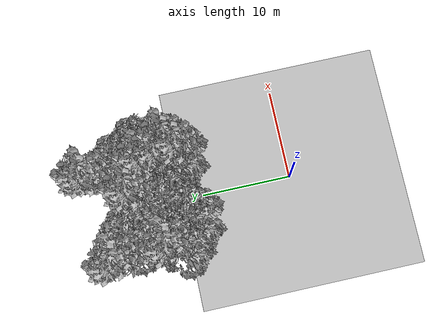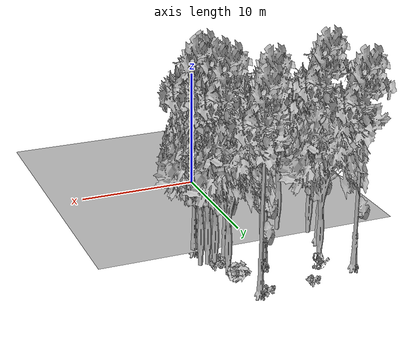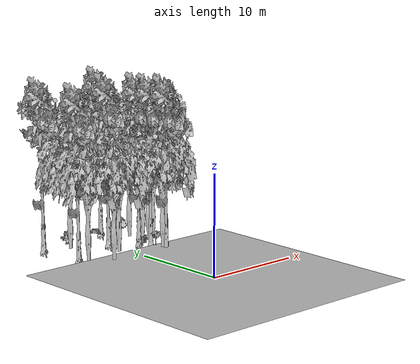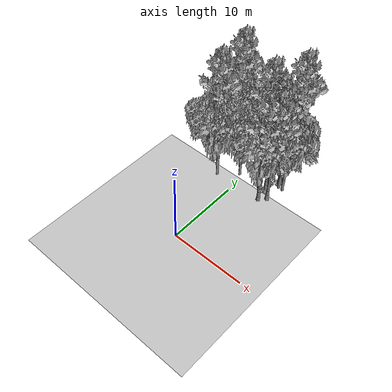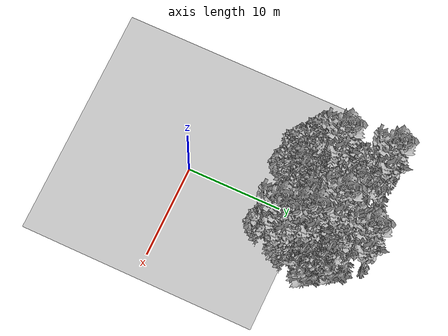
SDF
<sdf version="1.7">
 <world name="default">
  <model name="ground_plane">
   <static>1</static>
   <link name="link">
    <collision name="collision">
     <pose>-50 0 0 0 -0 0</pose>
     <geometry><plane><normal>0 0 1</normal><size>80 80</size></plane></geometry>
     <surface><contact><ode><min_depth>0.01</min_depth><max_vel>0</max_vel></ode></contact></surface>
    </collision>
    <visual name="grass">
     <cast_shadows>0</cast_shadows>
     <geometry>
      <mesh>
       <scale>0.46714285714285714 0.46714285714285714 0.1</scale>
       <uri>file://grass_plane/meshes/grass_plane.dae</uri>
      </mesh>
     </geometry>
    </visual>
   </link>
  </model>
  <model name="Tree 15">
   <static>1</static>
   <pose>-3.008472073308333 11.177539338462708 0 1.57079 -0 0</pose>
   <link name="link">
    <collision name="collision">
     <geometry><mesh><scale>3.5 5 3.5</scale><uri>model://tree_2/meshes/tree_2.obj</uri></mesh></geometry>
    </collision>
    <visual name="visual">
     <geometry><mesh><scale>3.5 5 3.5</scale><uri>model://tree_2/meshes/tree_2.obj</uri></mesh></geometry>
    </visual>
   </link>
  </model>
  <model name="Tree 34">
   <static>1</static>
   <pose>3.1567396485384123 14.59903139613359 0 1.57079 -0 0</pose>
   <link name="link">
    <collision name="collision">
     <geometry><mesh><scale>3.5 5 3.5</scale><uri>model://tree_9/meshes/tree_9.obj</uri></mesh></geometry>
    </collision>
    <visual name="visual">
     <geometry><mesh><scale>3.5 5 3.5</scale><uri>model://tree_9/meshes/tree_9.obj</uri></mesh></geometry>
    </visual>
   </link>
  </model>
  <model name="Tree 77">
   <static>1</static>
   <pose>4.506748126967771 14.727951077494403 0 1.57079 -0 0</pose>
   <link name="link">
    <collision name="collision">
     <geometry><mesh><scale>3.5 5 3.5</scale><uri>model://tree_2/meshes/tree_2.obj</uri></mesh></geometry>
    </collision>
    <visual name="visual">
     <geometry><mesh><scale>3.5 5 3.5</scale><uri>model://tree_2/meshes/tree_2.obj</uri></mesh></geometry>
    </visual>
   </link>
  </model>
  <model name="Tree 78">
   <static>1</static>
   <pose>3.893614119896853 11.234296576654465 0 1.57079 -0 0</pose>
   <link name="link">
    <collision name="collision">
     <geometry><mesh><scale>3.5 5 3.5</scale><uri>model://tree_9/meshes/tree_9.obj</uri></mesh></geometry>
    </collision>
    <visual name="visual">
     <geometry><mesh><scale>3.5 5 3.5</scale><uri>model://tree_9/meshes/tree_9.obj</uri></mesh></geometry>
    </visual>
   </link>
  </model>
  <model name="Tree 80">
   <static>1</static>
   <pose>2.6789125310340935 20.16093463343782 0 1.57079 -0 0</pose>
   <link name="link">
    <collision name="collision">
     <geometry><mesh><scale>3.5 5 3.5</scale><uri>model://tree_9/meshes/tree_9.obj</uri></mesh></geometry>
    </collision>
    <visual name="visual">
     <geometry><mesh><scale>3.5 5 3.5</scale><uri>model://tree_9/meshes/tree_9.obj</uri></mesh></geometry>
    </visual>
   </link>
  </model>
  <model name="Tree 92">
   <static>1</static>
   <pose>4.6491770082688575 12.11317582660427 0 1.57079 -0 0</pose>
   <link name="link">
    <collision name="collision">
     <geometry><mesh><scale>3.5 5 3.5</scale><uri>model://tree_9/meshes/tree_9.obj</uri></mesh></geometry>
    </collision>
    <visual name="visual">
     <geometry><mesh><scale>3.5 5 3.5</scale><uri>model://tree_9/meshes/tree_9.obj</uri></mesh></geometry>
    </visual>
   </link>
  </model>
  <model name="Tree 95">
   <static>1</static>
   <pose>-0.7458743930317482 13.14456808631256 0 1.57079 -0 0</pose>
   <link name="link">
    <collision name="collision">
     <geometry><mesh><scale>3.5 5 3.5</scale><uri>model://tree_2/meshes/tree_2.obj</uri></mesh></geometry>
    </collision>
    <visual name="visual">
     <geometry><mesh><scale>3.5 5 3.5</scale><uri>model://tree_2/meshes/tree_2.obj</uri></mesh></geometry>
    </visual>
   </link>
  </model>
  <model name="Tree 125">
   <static>1</static>
   <pose>3.5507401307957878 13.223727061594495 0 1.57079 -0 0</pose>
   <link name="link">
    <collision name="collision">
     <geometry><mesh><scale>3.5 5 3.5</scale><uri>model://tree_9/meshes/tree_9.obj</uri></mesh></geometry>
    </collision>
    <visual name="visual">
     <geometry><mesh><scale>3.5 5 3.5</scale><uri>model://tree_9/meshes/tree_9.obj</uri></mesh></geometry>
    </visual>
   </link>
  </model>
  <model name="Tree 157">
   <static>1</static>
   <pose>0.6082294412260865 16.356380824105486 0 1.57079 -0 0</pose>
   <link name="link">
    <collision name="collision">
     <geometry><mesh><scale>3.5 5 3.5</scale><uri>model://tree_9/meshes/tree_9.obj</uri></mesh></geometry>
    </collision>
    <visual name="visual">
     <geometry><mesh><scale>3.5 5 3.5</scale><uri>model://tree_9/meshes/tree_9.obj</uri></mesh></geometry>
    </visual>
   </link>
  </model>
  <model name="Tree 202">
   <static>1</static>
   <pose>-5.1987846861672224 13.87654636457134 0 1.57079 -0 0</pose>
   <link name="link">
    <collision name="collision">
     <geometry><mesh><scale>3.5 5 3.5</scale><uri>model://tree_9/meshes/tree_9.obj</uri></mesh></geometry>
    </collision>
    <visual name="visual">
     <geometry><mesh><scale>3.5 5 3.5</scale><uri>model://tree_9/meshes/tree_9.obj</uri></mesh></geometry>
    </visual>
   </link>
  </model>
  <model name="Tree 282">
   <static>1</static>
   <pose>-5.0518184097865415 12.636314302199132 0 1.57079 -0 0</pose>
   <link name="link">
    <collision name="collision">
     <geometry><mesh><scale>3.5 5 3.5</scale><uri>model://tree_2/meshes/tree_2.obj</uri></mesh></geometry>
    </collision>
    <visual name="visual">
     <geometry><mesh><scale>3.5 5 3.5</scale><uri>model://tree_2/meshes/tree_2.obj</uri></mesh></geometry>
    </visual>
   </link>
  </model>
  <model name="Tree 297">
   <static>1</static>
   <pose>4.113312639262723 15.21232277753667 0 1.57079 -0 0</pose>
   <link name="link">
    <collision name="collision">
     <geometry><mesh><scale>3.5 5 3.5</scale><uri>model://tree_2/meshes/tree_2.obj</uri></mesh></geometry>
    </collision>
    <visual name="visual">
     <geometry><mesh><scale>3.5 5 3.5</scale><uri>model://tree_2/meshes/tree_2.obj</uri></mesh></geometry>
    </visual>
   </link>
  </model>
  <model name="Tree 338">
   <static>1</static>
   <pose>-5.690571813645356 18.91916739874305 0 1.57079 -0 0</pose>
   <link name="link">
    <collision name="collision">
     <geometry><mesh><scale>3.5 5 3.5</scale><uri>model://tree_9/meshes/tree_9.obj</uri></mesh></geometry>
    </collision>
    <visual name="visual">
     <geometry><mesh><scale>3.5 5 3.5</scale><uri>model://tree_9/meshes/tree_9.obj</uri></mesh></geometry>
    </visual>
   </link>
  </model>
  <model name="Tree 415">
   <static>1</static>
   <pose>5.0722901919332415 14.70469992831088 0 1.57079 -0 0</pose>
   <link name="link">
    <collision name="collision">
     <geometry><mesh><scale>3.5 5 3.5</scale><uri>model://tree_2/meshes/tree_2.obj</uri></mesh></geometry>
    </collision>
    <visual name="visual">
     <geometry><mesh><scale>3.5 5 3.5</scale><uri>model://tree_2/meshes/tree_2.obj</uri></mesh></geometry>
    </visual>
   </link>
  </model>
  <model name="Tree 433">
   <static>1</static>
   <pose>3.750443136170034 16.877378313252876 0 1.57079 -0 0</pose>
   <link name="link">
    <collision name="collision">
     <geometry><mesh><scale>3.5 5 3.5</scale><uri>model://tree_2/meshes/tree_2.obj</uri></mesh></geometry>
    </collision>
    <visual name="visual">
     <geometry><mesh><scale>3.5 5 3.5</scale><uri>model://tree_2/meshes/tree_2.obj</uri></mesh></geometry>
    </visual>
   </link>
  </model>
  <model name="Tree 569">
   <static>1</static>
   <pose>3.5848150022201324 11.493796048506056 0 1.57079 -0 0</pose>
   <link name="link">
    <collision name="collision">
     <geometry><mesh><scale>3.5 5 3.5</scale><uri>model://tree_2/meshes/tree_2.obj</uri></mesh></geometry>
    </collision>
    <visual name="visual">
     <geometry><mesh><scale>3.5 5 3.5</scale><uri>model://tree_2/meshes/tree_2.obj</uri></mesh></geometry>
    </visual>
   </link>
  </model>
  <model name="Tree 607">
   <static>1</static>
   <pose>-3.665129989836359 17.236085767057915 0 1.57079 -0 0</pose>
   <link name="link">
    <collision name="collision">
     <geometry><mesh><scale>3.5 5 3.5</scale><uri>model://tree_2/meshes/tree_2.obj</uri></mesh></geometry>
    </collision>
    <visual name="visual">
     <geometry><mesh><scale>3.5 5 3.5</scale><uri>model://tree_2/meshes/tree_2.obj</uri></mesh></geometry>
    </visual>
   </link>
  </model>
  <model name="Bush 294">
   <static>1</static>
   <pose>-1.6454879413047365 20.18886357991508 0 1.57079 -0 0</pose>
   <link name="link">
    <collision name="collision">
     <geometry><mesh><scale>2 2 2</scale><uri>model://bush_2/meshes/bush_2.obj</uri></mesh></geometry>
     <surface><contact><collide_without_contact>false</collide_without_contact></contact></surface>
    </collision>
    <visual name="visual">
     <geometry><mesh><scale>2 2 2</scale><uri>model://bush_2/meshes/bush_2.obj</uri></mesh></geometry>
    </visual>
   </link>
  </model>
  <model name="Bush 313">
   <static>1</static>
   <pose>2.115046912629296 20.31048165812131 0 1.57079 -0 0</pose>
   <link name="link">
    <collision name="collision">
     <geometry><mesh><scale>2 2 2</scale><uri>model://bush_2/meshes/bush_2.obj</uri></mesh></geometry>
     <surface><contact><collide_without_contact>false</collide_without_contact></contact></surface>
    </collision>
    <visual name="visual">
     <geometry><mesh><scale>2 2 2</scale><uri>model://bush_2/meshes/bush_2.obj</uri></mesh></geometry>
    </visual>
   </link>
  </model>
  <model name="Bush 338">
   <static>1</static>
   <pose>4.097750597895889 15.211938249415923 0 1.57079 -0 0</pose>
   <link name="link">
    <collision name="collision">
     <geometry><mesh><scale>2 2 2</scale><uri>model://bush_2/meshes/bush_2.obj</uri></mesh></geometry>
     <surface><contact><collide_without_contact>false</collide_without_contact></contact></surface>
    </collision>
    <visual name="visual">
     <geometry><mesh><scale>2 2 2</scale><uri>model://bush_2/meshes/bush_2.obj</uri></mesh></geometry>
    </visual>
   </link>
  </model>
  <model name="Bush 395">
   <static>1</static>
   <pose>3.3320705846557885 14.466816870667252 0 1.57079 -0 0</pose>
   <link name="link">
    <collision name="collision">
     <geometry><mesh><scale>2 2 2</scale><uri>model://bush_2/meshes/bush_2.obj</uri></mesh></geometry>
     <surface><contact><collide_without_contact>false</collide_without_contact></contact></surface>
    </collision>
    <visual name="visual">
     <geometry><mesh><scale>2 2 2</scale><uri>model://bush_2/meshes/bush_2.obj</uri></mesh></geometry>
    </visual>
   </link>
  </model>
  <model name="Bush 408">
   <static>1</static>
   <pose>-2.830403170848733 18.739013673774352 0 1.57079 -0 0</pose>
   <link name="link">
    <collision name="collision">
     <geometry><mesh><scale>2 2 2</scale><uri>model://bush_4/meshes/bush_4.obj</uri></mesh></geometry>
     <surface><contact><collide_without_contact>false</collide_without_contact></contact></surface>
    </collision>
    <visual name="visual">
     <geometry><mesh><scale>2 2 2</scale><uri>model://bush_4/meshes/bush_4.obj</uri></mesh></geometry>
    </visual>
   </link>
  </model>
  <model name="Bush 618">
   <static>1</static>
   <pose>3.4738104452129477 12.35702313456219 0 1.57079 -0 0</pose>
   <link name="link">
    <collision name="collision">
     <geometry><mesh><scale>2 2 2</scale><uri>model://bush_5/meshes/bush_5.obj</uri></mesh></geometry>
     <surface><contact><collide_without_contact>false</collide_without_contact></contact></surface>
    </collision>
    <visual name="visual">
     <geometry><mesh><scale>2 2 2</scale><uri>model://bush_5/meshes/bush_5.obj</uri></mesh></geometry>
    </visual>
   </link>
  </model>
  <model name="Bush 638">
   <static>1</static>
   <pose>3.7721311294848476 18.374622902513742 0 1.57079 -0 0</pose>
   <link name="link">
    <collision name="collision">
     <geometry><mesh><scale>2 2 2</scale><uri>model://bush_1/meshes/bush_1.obj</uri></mesh></geometry>
     <surface><contact><collide_without_contact>false</collide_without_contact></contact></surface>
    </collision>
    <visual name="visual">
     <geometry><mesh><scale>2 2 2</scale><uri>model://bush_1/meshes/bush_1.obj</uri></mesh></geometry>
    </visual>
   </link>
  </model>
 </world>
</sdf>
